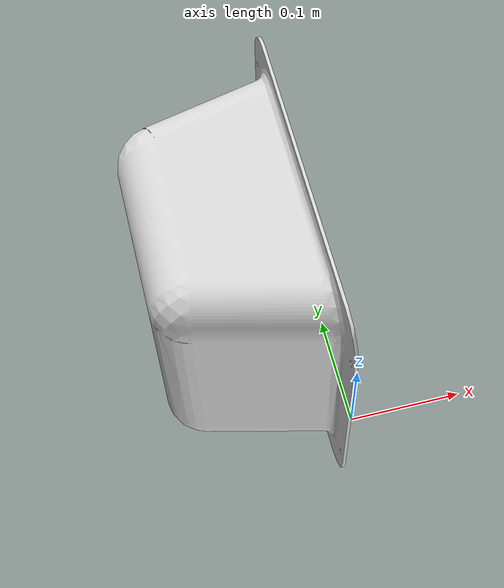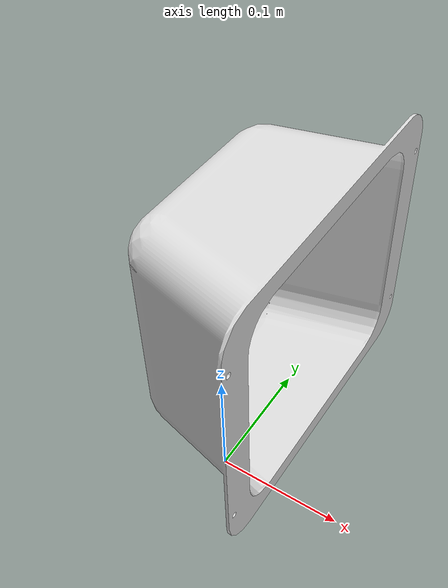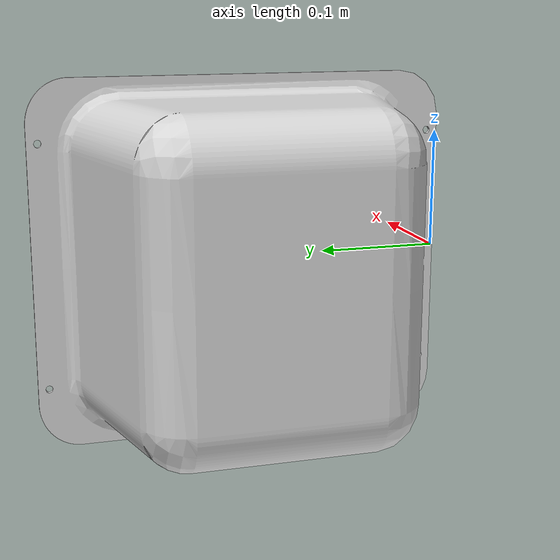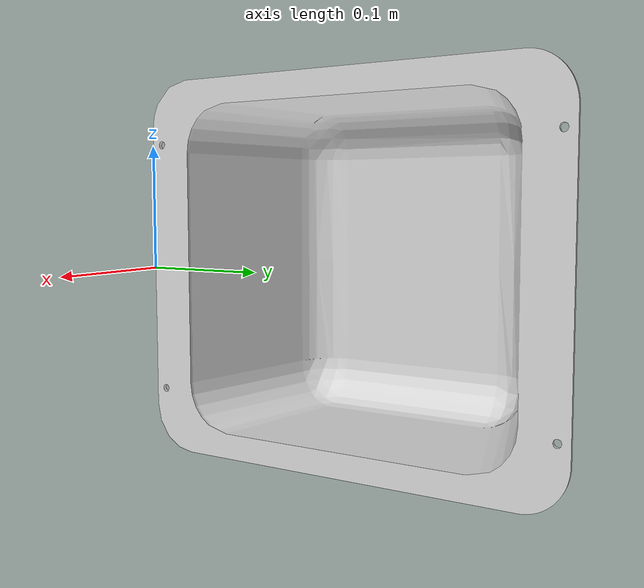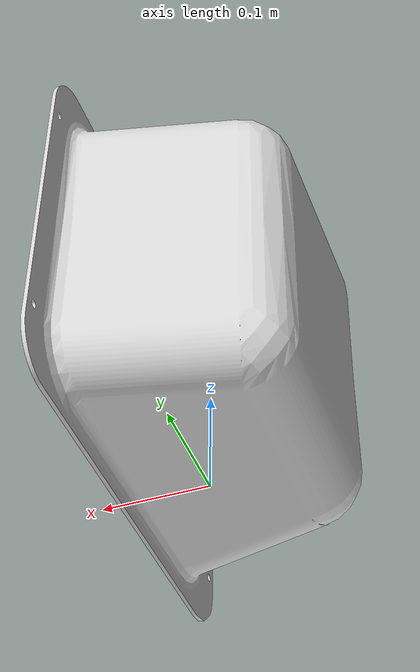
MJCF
<mujoco model="cubby_1">
  <default>
    <default class="visual">
      <geom group="2" type="mesh" contype="0" conaffinity="0"/>
    </default>
    <default class="collision">
      <geom group="3" type="mesh"/>
    </default>
  </default>
  <asset>
    <material name="mtl_cubby_1" specular="0.20000000000000004" shininess="1.0" rgba="0.85098039 0.85098039 0.85098039 1.0"/>
    <mesh file="cubby_1.obj"/>
  </asset>
  <worldbody>
    <body name="cubby_1">
      <geom material="mtl_cubby_1" mesh="cubby_1" class="visual"/>
      <geom mesh="cubby_1" class="collision"/>
    </body>
  </worldbody>
</mujoco>
